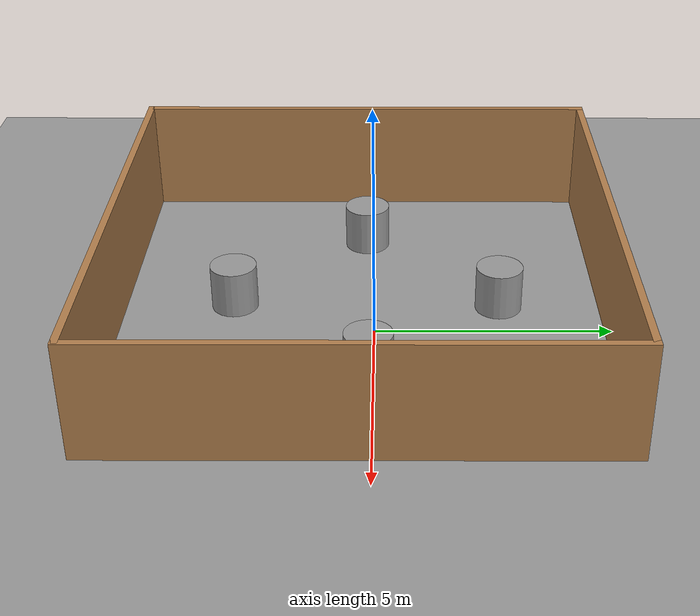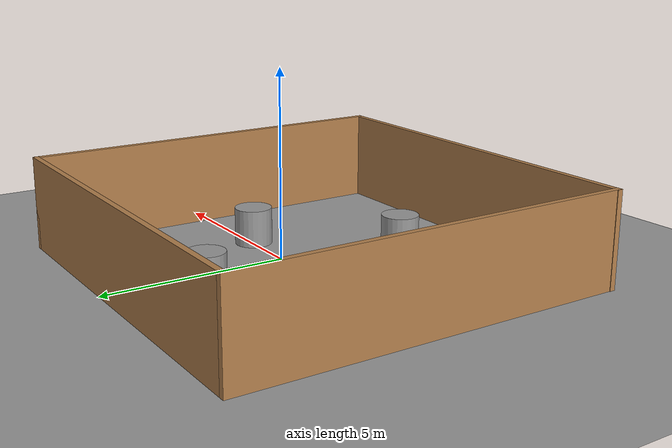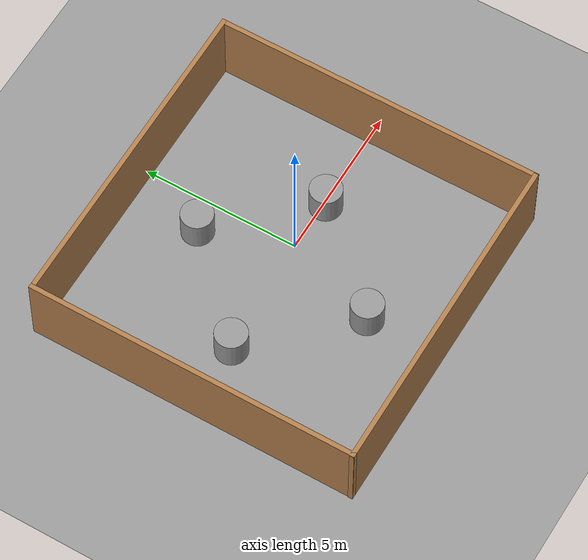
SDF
<sdf version="1.6">
 <world name="default">
  <light name="sun" type="directional">
   <pose>0 0 10 0 -0 0</pose>
   <diffuse>0.8 0.8 0.8 1</diffuse>
   <specular>0.2 0.2 0.2 1</specular>
   <attenuation>
    <range>1000</range>
    <constant>0.9</constant>
    <linear>0.01</linear>
    <quadratic>0.001</quadratic>
   </attenuation>
   <direction>0.5 0.1 -0.9</direction>
  </light>
  <scene><ambient>0.4 0.4 0.4 1</ambient><background>0.7 0.7 0.7 1</background><shadows>1</shadows></scene>
  <physics name="default_physics" default="0" type="ode">
   <max_step_size>0.01</max_step_size>
   <real_time_factor>1</real_time_factor>
   <real_time_update_rate>100</real_time_update_rate>
  </physics>
  <model name="ground_plane_0">
   <static>1</static>
   <link name="link">
    <collision name="collision">
     <geometry><plane><normal>0 0 1</normal><size>100 100</size></plane></geometry>
     <surface><friction><ode><mu>100</mu><mu2>50</mu2></ode></friction></surface>
    </collision>
    <visual name="visual">
     <cast_shadows>0</cast_shadows>
     <geometry><plane><normal>0 0 1</normal><size>100 100</size></plane></geometry>
     <material>
      <script><uri>file://media/materials/scripts/gazebo.material</uri><name>Gazebo/Grey</name></script>
     </material>
    </visual>
    <velocity_decay><linear>0</linear><angular>0</angular></velocity_decay>
   </link>
   <pose>0.497681 0 0 0 -0 0</pose>
  </model>
  <model name="unit_cylinder_1">
   <pose>-1.06628 -3.01997 0.49912 0 -0 0</pose>
   <link name="link">
    <inertial>
     <mass>1</mass>
     <inertia><ixx>1</ixx><ixy>0</ixy><ixz>0</ixz><iyy>1</iyy><iyz>0</iyz><izz>1</izz></inertia>
    </inertial>
    <collision name="collision">
     <geometry><cylinder><radius>0.5</radius><length>1</length></cylinder></geometry>
    </collision>
    <visual name="visual">
     <geometry><cylinder><radius>0.5</radius><length>1</length></cylinder></geometry>
     <material>
      <script><uri>file://media/materials/scripts/gazebo.material</uri><name>Gazebo/Grey</name></script>
     </material>
    </visual>
    <velocity_decay><linear>0</linear><angular>0</angular></velocity_decay>
   </link>
   <static>0</static>
  </model>
  <gravity>0 0 -9.8</gravity>
  <magnetic_field>6e-06 2.3e-05 -4.2e-05</magnetic_field>
  <atmosphere type="adiabatic"/>
  <spherical_coordinates>
   <surface_model>EARTH_WGS84</surface_model>
   <latitude_deg>0</latitude_deg>
   <longitude_deg>0</longitude_deg>
   <elevation>0</elevation>
   <heading_deg>0</heading_deg>
  </spherical_coordinates>
  <model name="Room">
   <pose>-0.94377 -0.26241 0 0 -0 0</pose>
   <link name="Wall_0">
    <collision name="Wall_0_Collision">
     <geometry><box><size>10.495 0.15 2.5</size></box></geometry>
     <pose>0 0 1.25 0 -0 0</pose>
    </collision>
    <visual name="Wall_0_Visual">
     <pose>0 0 1.25 0 -0 0</pose>
     <geometry><box><size>10.495 0.15 2.5</size></box></geometry>
     <material>
      <script><uri>file://media/materials/scripts/gazebo.material</uri><name>Gazebo/Wood</name></script>
      <ambient>1 1 1 1</ambient>
     </material>
    </visual>
    <pose>-0.011255 -5.175 0 0 -0 3.14159</pose>
   </link>
   <link name="Wall_4">
    <collision name="Wall_4_Collision">
     <geometry><box><size>10.5 0.15 2.5</size></box></geometry>
     <pose>0 0 1.25 0 -0 0</pose>
    </collision>
    <visual name="Wall_4_Visual">
     <pose>0 0 1.25 0 -0 0</pose>
     <geometry><box><size>10.5 0.15 2.5</size></box></geometry>
     <material>
      <script><uri>file://media/materials/scripts/gazebo.material</uri><name>Gazebo/Wood</name></script>
      <ambient>1 1 1 1</ambient>
     </material>
    </visual>
    <pose>-5.16626 0 0 0 -0 1.5708</pose>
   </link>
   <link name="Wall_6">
    <collision name="Wall_6_Collision">
     <geometry><box><size>10.5 0.15 2.5</size></box></geometry>
     <pose>0 0 1.25 0 -0 0</pose>
    </collision>
    <visual name="Wall_6_Visual">
     <pose>0 0 1.25 0 -0 0</pose>
     <geometry><box><size>10.5 0.15 2.5</size></box></geometry>
     <material>
      <script><uri>file://media/materials/scripts/gazebo.material</uri><name>Gazebo/Wood</name></script>
      <ambient>1 1 1 1</ambient>
     </material>
    </visual>
    <pose>0.008745 5.175 0 0 -0 0</pose>
   </link>
   <link name="Wall_7">
    <collision name="Wall_7_Collision">
     <geometry><box><size>10.5 0.15 2.5</size></box></geometry>
     <pose>0 0 1.25 0 -0 0</pose>
    </collision>
    <visual name="Wall_7_Visual">
     <pose>0 0 1.25 0 -0 0</pose>
     <geometry><box><size>10.5 0.15 2.5</size></box></geometry>
     <material>
      <script><uri>file://media/materials/scripts/gazebo.material</uri><name>Gazebo/Wood</name></script>
      <ambient>1 1 1 1</ambient>
     </material>
    </visual>
    <pose>5.18375 0 0 0 0 -1.5708</pose>
   </link>
   <static>1</static>
  </model>
  <model name="unit_cylinder_1_clone">
   <pose>-3.85132 -0.188317 0.49912 0 0 -1e-06</pose>
   <link name="link">
    <inertial>
     <mass>1</mass>
     <inertia><ixx>1</ixx><ixy>0</ixy><ixz>0</ixz><iyy>1</iyy><iyz>0</iyz><izz>1</izz></inertia>
    </inertial>
    <collision name="collision">
     <geometry><cylinder><radius>0.5</radius><length>1</length></cylinder></geometry>
    </collision>
    <visual name="visual">
     <geometry><cylinder><radius>0.5</radius><length>1</length></cylinder></geometry>
     <material>
      <script><uri>file://media/materials/scripts/gazebo.material</uri><name>Gazebo/Grey</name></script>
     </material>
    </visual>
    <velocity_decay><linear>0</linear><angular>0</angular></velocity_decay>
   </link>
   <static>0</static>
  </model>
  <model name="unit_cylinder_1_clone_0">
   <pose>-0.991775 2.67473 0.49912 0 -0 0</pose>
   <link name="link">
    <inertial>
     <mass>1</mass>
     <inertia><ixx>1</ixx><ixy>0</ixy><ixz>0</ixz><iyy>1</iyy><iyz>0</iyz><izz>1</izz></inertia>
    </inertial>
    <collision name="collision">
     <geometry><cylinder><radius>0.5</radius><length>1</length></cylinder></geometry>
    </collision>
    <visual name="visual">
     <geometry><cylinder><radius>0.5</radius><length>1</length></cylinder></geometry>
     <material>
      <script><uri>file://media/materials/scripts/gazebo.material</uri><name>Gazebo/Grey</name></script>
     </material>
    </visual>
    <velocity_decay><linear>0</linear><angular>0</angular></velocity_decay>
   </link>
   <static>0</static>
  </model>
  <model name="unit_cylinder_1_clone_1">
   <pose>1.61776 -0.092596 0.49912 0 -0 0</pose>
   <link name="link">
    <inertial>
     <mass>1</mass>
     <inertia><ixx>1</ixx><ixy>0</ixy><ixz>0</ixz><iyy>1</iyy><iyz>0</iyz><izz>1</izz></inertia>
    </inertial>
    <collision name="collision">
     <geometry><cylinder><radius>0.5</radius><length>1</length></cylinder></geometry>
    </collision>
    <visual name="visual">
     <geometry><cylinder><radius>0.5</radius><length>1</length></cylinder></geometry>
     <material>
      <script><uri>file://media/materials/scripts/gazebo.material</uri><name>Gazebo/Grey</name></script>
     </material>
    </visual>
    <velocity_decay><linear>0</linear><angular>0</angular></velocity_decay>
   </link>
   <static>0</static>
  </model>
 </world>
</sdf>
